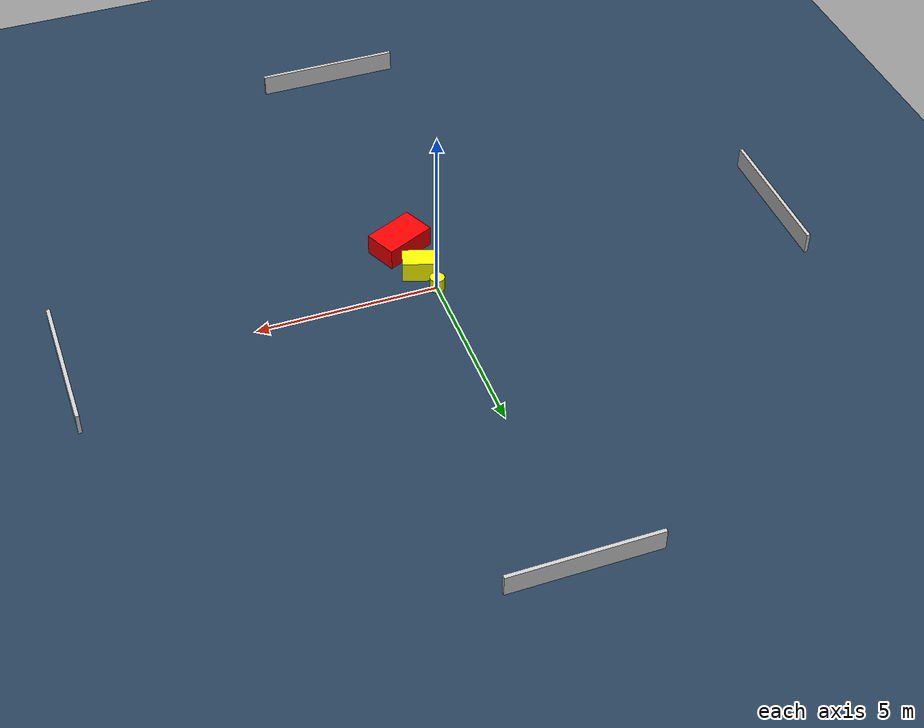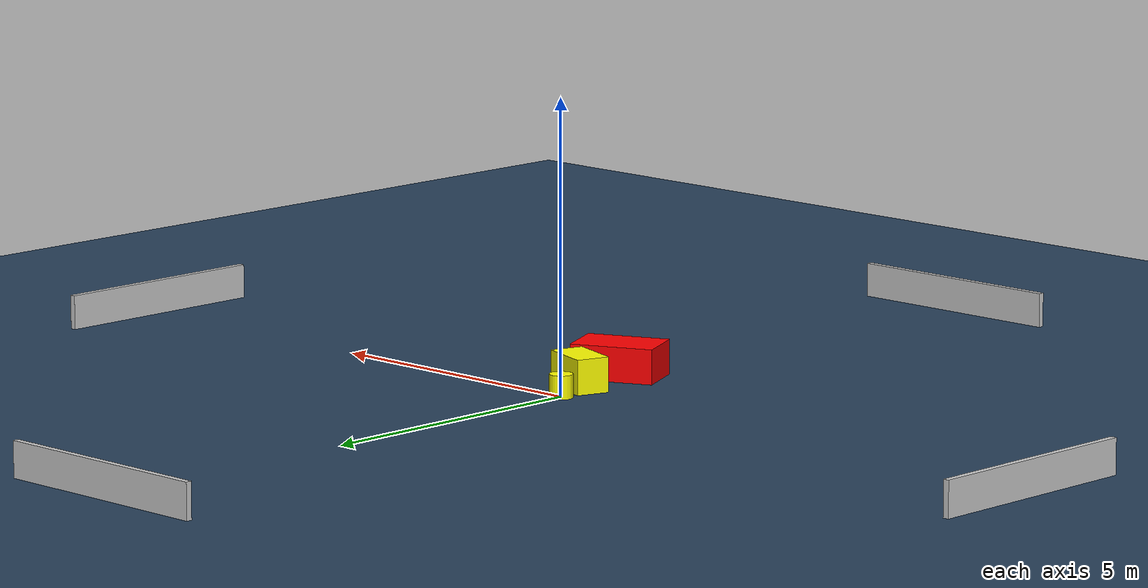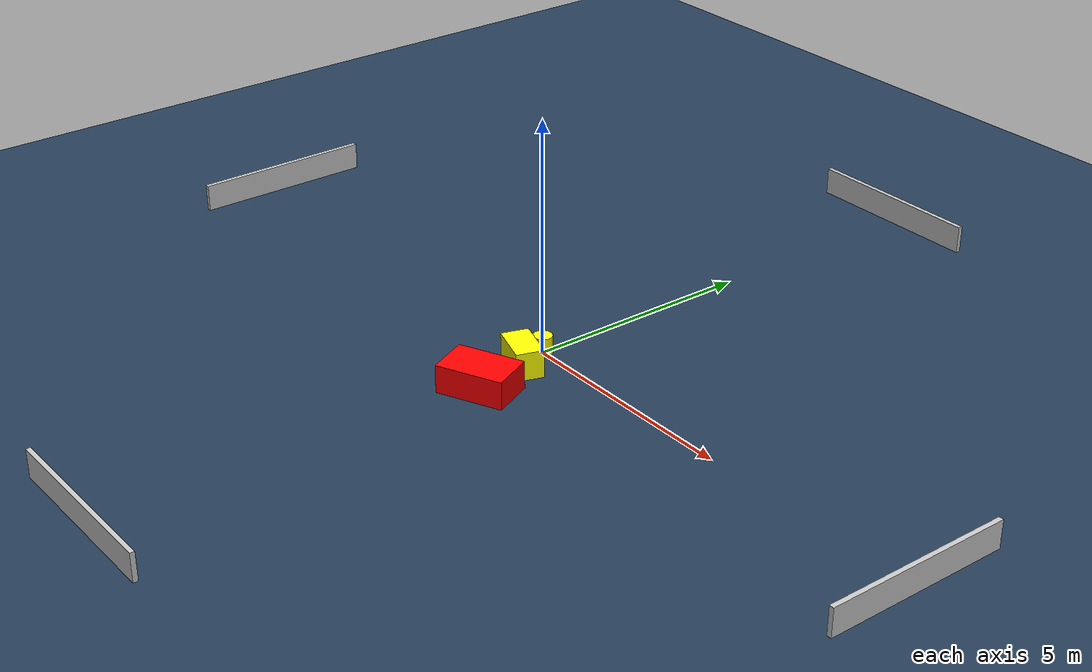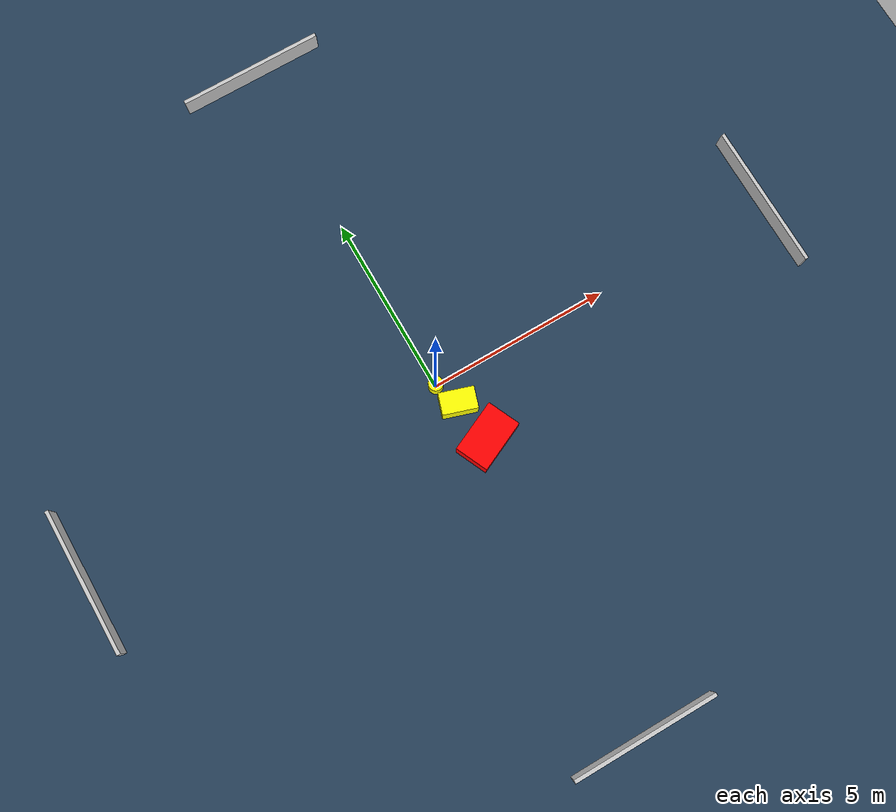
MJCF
<?xml version="1.0" ?>
<mujoco model="generated_environment">
  <option timestep="0.01" integrator="RK4" cone="elliptic"/>
  <default>
    <geom density="1"/>
  </default>
  <asset>
    <texture builtin="gradient" height="3072" name="skybox" rgb1="0.3 0.5 0.7" rgb2="0 0 0" type="skybox" width="512"/>
    <texture builtin="checker" height="300" name="groundplane" rgb1="0.2 0.3 0.4" rgb2="0.1 0.2 0.3" type="2d" width="300"/>
    <material name="groundplane" reflectance="0.2" texrepeat="5 5" texture="groundplane"/>
  </asset>
  <worldbody>
    <light dir="0 0 -1" directional="true" pos="0 0 1.5"/>
    <geom condim="3" friction="0.5 0.005 0.001" material="groundplane" name="floor" pos="0 0 0" size="0 0 0.05" type="plane"/>
    <body name="walls">
      <geom name="wall_1" condim="4" pos="-10.0 0.0 0.3" rgba="0.800000011920929 0.800000011920929 0.800000011920929 1.0" size="0.05 2.0 0.3" type="box"/>
      <geom name="wall_2" condim="4" pos="10.0 0.0 0.3" rgba="0.800000011920929 0.800000011920929 0.800000011920929 1.0" size="0.05 2.0 0.3" type="box"/>
      <geom name="wall_3" condim="4" pos="0.0 -10.0 0.3" rgba="0.800000011920929 0.800000011920929 0.800000011920929 1.0" size="2.0 0.05 0.3" type="box"/>
      <geom name="wall_4" condim="4" pos="0.0 10.0 0.3" rgba="0.800000011920929 0.800000011920929 0.800000011920929 1.0" size="2.0 0.05 0.3" type="box"/>
    </body>
    <body name="robot">
      <joint name="joint_x" type="slide" pos="0 0 0" axis="1 0 0"/>
      <joint name="joint_y" type="slide" pos="0 0 0" axis="0 1 0"/>
      <geom name="robot" type="cylinder" pos="0.0 0.0 0.2" size="0.2 0.2 0.0" mass="5.0" friction="1.0 0.005 0.0001" condim="4" rgba="1.0 1.0 0.0 1.0"/>
    </body>
    <body name="obstacle_1_movable">
      <geom name="obstacle_1_movable" condim="4" pos="0.2527689114806473 -0.7012388135672996 0.3" euler="0 0 342.0982158912445" friction="0.0 0.005 0.001" rgba="1.0 1.0 0.0 1.0" size="0.47072775490100455 0.29275057492064743 0.3" type="box" mass="0.1"/>
      <joint type="free"/>
    </body>
    <body name="obstacle_2_static">
      <geom name="obstacle_2_static" condim="4" pos="0.4371877287043811 -1.8595212651349706 0.3" euler="0 0 24.684642008231577" friction="0.0 0.005 0.001" rgba="1.0 0.0 0.0 1.0" size="0.723298712222987 0.466065362183114 0.3" type="box"/>
    </body>
  </worldbody>
  <actuator>
    <motor name="actuator_x" joint="joint_x" gear="1" ctrlrange="-1 1"/>
    <motor name="actuator_y" joint="joint_y" gear="1" ctrlrange="-1 1"/>
  </actuator>
</mujoco>
